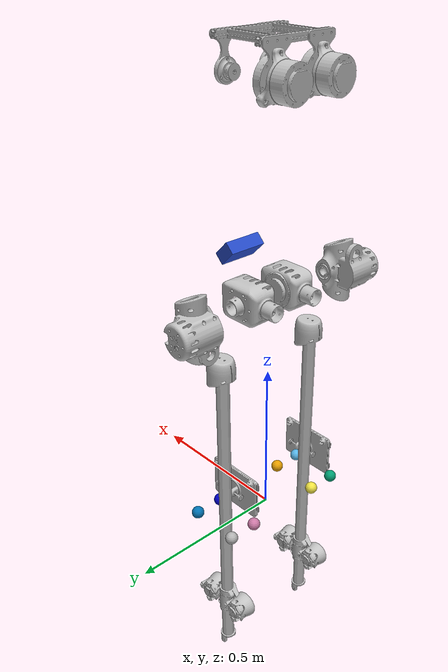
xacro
<?xml version="1.0" encoding="utf-8"?>
<robot
  name="slider_2_0_urdf" xmlns:xacro="http://ros.org/wiki/xacro">

  <xacro:include filename="$(find slider_2_0_urdf)/urdf/slider_2_0_.gazebo.xacro"/>

  <xacro:property name="r200_cam_rgb_px" value="0.005"/>
  <xacro:property name="r200_cam_rgb_py" value="0.018"/>
  <xacro:property name="r200_cam_rgb_pz" value="0.013"/>
  <xacro:property name="r200_cam_depth_offset" value="0.01"/>
  <xacro:property name="camera_link" value="0.05" /> <!-- Size of square 'camera' box -->

<gazebo>
  <plugin name="gazebo_ros_control" filename="libgazebo_ros_control.so">
    <robotNamespace>slider_2_0_urdf</robotNamespace>
    <legacyModeNS>true</legacyModeNS>
  </plugin>
</gazebo>

  <!--Initial height 63401 -->
  <link
    name="world"/>

  <joint
    name="base_joint"
    type="fixed">
    <origin
      xyz="0 0 0.76"
      rpy="0 0 0" />
    <parent
      link="world" />
    <child
      link="base_link" />
  </joint>
    <link
    name="base_link">
    <inertial>
      <origin
        xyz="-0.0453875985958373 4.1101974042046E-09 0.0194103621449836"
        rpy="0 0 0" />
      <mass
        value="2.43528061544389" />
      <inertia
        ixx="0.00413341668715068"
        ixy="-1.3241820084219E-07"
        ixz="-4.03338738202236E-06"
        iyy="0.00231368923917245"
        iyz="4.40192080686644E-10"
        izz="0.00271164207352103" />
    </inertial>
    <visual>
      <origin
        xyz="0 0 0"
        rpy="0 0 0" />
      <geometry>
        <mesh
          filename="package://slider_2_0_urdf/meshes/base_link.STL" />
      </geometry>
      <material
        name="">
        <color
          rgba="0.752941176470588 0.752941176470588 0.752941176470588 1" />
      </material>
    </visual>
    <collision>
      <origin
        xyz="0 0 0"
        rpy="0 0 0" />
      <geometry>
        <mesh
          filename="package://slider_2_0_urdf/meshes/col/base_link.STL" />
      </geometry>
    </collision>
  </link>
  <link
    name="Right_Pitch_casing">
    <inertial>
      <origin
        xyz="-0.00651307299910235 -0.000261818107759049 7.57108328304501E-06"
        rpy="0 0 0" />
      <mass
        value="1.12926003306143" />
      <inertia
        ixx="0.00127402444645982"
        ixy="-3.29852965020171E-06"
        ixz="3.71991088459448E-07"
        iyy="0.00204304191154168"
        iyz="-1.08712190437952E-06"
        izz="0.00154557348211055" />
    </inertial>
    <visual>
      <origin
        xyz="0 0 0"
        rpy="0 0 0" />
      <geometry>
        <mesh
          filename="package://slider_2_0_urdf/meshes/Right_Pitch_casing.STL" />
      </geometry>
      <material
        name="">
        <color
          rgba="0.752941176470588 0.752941176470588 0.752941176470588 1" />
      </material>
    </visual>
    <collision>
      <origin
        xyz="0 0 0"
        rpy="0 0 0" />
      <geometry>
        <mesh
          filename="package://slider_2_0_urdf/meshes/col/Right_Pitch_casing.STL" />
      </geometry>
    </collision>
  </link>
  <joint
    name="Right_Roll"
    type="revolute">
    <origin
      xyz="0 -0.075 0"
      rpy="0 0 0" />
    <parent
      link="base_link" />
    <child
      link="Right_Pitch_casing" />
    <axis
      xyz="-1 0 0" />
    <limit
      lower="-1.57"
      upper="0.35"
      effort="480"
      velocity="3.14" />
  </joint>
  <link
    name="Right_Slide_Casing">
    <inertial>
      <origin
        xyz="-0.032449657946544 -0.0178443973043905 0.000925651738627742"
        rpy="0 0 0" />
      <mass
        value="1.06490938870739" />
      <inertia
        ixx="0.00177168306828385"
        ixy="9.42143802025665E-05"
        ixz="1.06116585579069E-05"
        iyy="0.00185406707357424"
        iyz="-4.7626626084953E-05"
        izz="0.00084343137730316" />
    </inertial>
    <visual>
      <origin
        xyz="0 0 0"
        rpy="0 0 0" />
      <geometry>
        <mesh
          filename="package://slider_2_0_urdf/meshes/Right_Slide_Casing.STL" />
      </geometry>
      <material
        name="">
        <color
          rgba="0.752941176470588 0.752941176470588 0.752941176470588 1" />
      </material>
    </visual>
    <collision>
      <origin
        xyz="0 0 0"
        rpy="0 0 0" />
      <geometry>
        <mesh
          filename="package://slider_2_0_urdf/meshes/col/Right_Slide_Casing.STL" />
      </geometry>
    </collision>
  </link>
  <joint
    name="Right_Pitch"
    type="revolute">
    <origin
      xyz="0 -0.1042 0"
      rpy="0 0 0" />
    <parent
      link="Right_Pitch_casing" />
    <child
      link="Right_Slide_Casing" />
    <axis
      xyz="0 1 0" />
    <limit
      lower="-1.57"
      upper="1.57"
      effort="180"
      velocity="28" />
  </joint>
  <link
    name="Right_Leg">
    <inertial>
      <origin
        xyz="-0.023399788642906 0.000112329052341098 0.455007883008058"
        rpy="0 0 0" />
      <mass
        value="1.78099056785378" />
      <inertia
        ixx="0.0423994212593207"
        ixy="8.85717263604672E-07"
        ixz="-3.06328044795182E-06"
        iyy="0.0432292529501747"
        iyz="2.34769550705421E-06"
        izz="0.00149023390575234" />
    </inertial>
    <visual>
      <origin
        xyz="0 0 0"
        rpy="0 0 0" />
      <geometry>
        <mesh
          filename="package://slider_2_0_urdf/meshes/Right_Leg.STL" />
      </geometry>
      <material
        name="">
        <color
          rgba="0.752941176470588 0.752941176470588 0.752941176470588 1" />
      </material>
    </visual>
    <collision>
      <origin
        xyz="0 0 0"
        rpy="0 0 0" />
      <geometry>
        <mesh
          filename="package://slider_2_0_urdf/meshes/col/Right_Leg.STL" />
      </geometry>
    </collision>
  </link>
  <joint
    name="Right_Slide"
    type="prismatic">
    <origin
      xyz="0 0 -0.7"
      rpy="0 0 0" />
    <parent
      link="Right_Slide_Casing" />
    <child
      link="Right_Leg" />
    <axis
      xyz="0 0 1" />
    <limit
      lower="-0.35"
      upper="0.26"
      effort="3150"
      velocity="0.56" />
  </joint>
  <link
    name="Right_Foot_Pitch_Link">
    <inertial>
      <origin
        xyz="6.30627592078862E-05 2.21613180029223E-08 -1.27034415209337E-08"
        rpy="0 0 0" />
      <mass
        value="0.0383125474516294" />
      <inertia
        ixx="4.3235133950203E-06"
        ixy="-1.57099122601101E-12"
        ixz="-1.16795718725966E-12"
        iyy="4.37123956381505E-06"
        iyz="7.01277910311096E-13"
        izz="4.11906265940508E-06" />
    </inertial>
    <visual>
      <origin
        xyz="0 0 0"
        rpy="0 0 0" />
      <geometry>
        <mesh
          filename="package://slider_2_0_urdf/meshes/Right_Foot_Pitch_Link.STL" />
      </geometry>
      <material
        name="">
        <color
          rgba="0.752941176470588 0.752941176470588 0.752941176470588 1" />
      </material>
    </visual>
    <collision>
      <origin
        xyz="0 0 0"
        rpy="0 0 0" />
      <geometry>
        <mesh
          filename="package://slider_2_0_urdf/meshes/col/Right_Foot_Pitch_Link.STL" />
      </geometry>
    </collision>
  </link>
  <joint
    name="Right_Foot_Pitch"
    type="revolute">
    <origin
      xyz="0 0 0"
      rpy="0 0 0" />
    <parent
      link="Right_Leg" />
    <child
      link="Right_Foot_Pitch_Link" />
    <axis
      xyz="0 1 0" />
    <limit
      lower="-0.52"
      upper="0.52"
      effort="100"
      velocity="28" />
  </joint>
  <link
    name="Right_Foot">
    <inertial>
      <origin
        xyz="-0.00123693071420694 -3.33066907387547E-16 -0.0248604745871576"
        rpy="0 0 0" />
      <mass
        value="0.756541848703211" />
      <inertia
        ixx="0.000826117771410223"
        ixy="-8.45141249055299E-13"
        ixz="5.44373609390476E-09"
        iyy="0.00233223123259619"
        iyz="-1.21621858010233E-19"
        izz="0.00314822353477104" />
    </inertial>
    <visual>
      <origin
        xyz="0.14 -0.14 -0.08"
        rpy="1.57079632679 0 3.14159265359" />
      <geometry>
        <mesh
          filename="package://slider_2_0_urdf/meshes/Right_Foot.STL" />
      </geometry>
      <material
        name="">
        <color
          rgba="0.752941176470588 0.752941176470588 0.752941176470588 1" />
      </material>
    </visual>
    <collision>
      <origin
        xyz="0.14 -0.14 -0.08"
        rpy="1.57079632679 0 3.14159265359" />
      <geometry>
        <mesh
          filename="package://slider_2_0_urdf/meshes/col/Right_Foot.STL" />
      </geometry>
    </collision>
  </link>
  <joint
    name="Right_Foot_Roll"
    type="revolute">
    <origin
      xyz="0 0 0"
      rpy="0 0 0" />
    <parent
      link="Right_Foot_Pitch_Link" />
    <child
      link="Right_Foot" />
    <axis
      xyz="1 0 0" />
    <limit
      lower="-0.52"
      upper="0.52"
      effort="30"
      velocity="28" />
  </joint>
  <link
    name="Left_Pitch_casing">
    <inertial>
      <origin
        xyz="-0.006513072999102 0.000261818107759423 -7.57108328312828E-06"
        rpy="0 0 0" />
      <mass
        value="1.12926003306143" />
      <inertia
        ixx="0.00127402444645982"
        ixy="3.29852965019084E-06"
        ixz="-3.71991088473583E-07"
        iyy="0.00204304191154168"
        iyz="-1.08712190438163E-06"
        izz="0.00154557348211055" />
    </inertial>
    <visual>
      <origin
        xyz="0 0 0"
        rpy="0 0 0" />
      <geometry>
        <mesh
          filename="package://slider_2_0_urdf/meshes/Left_Pitch_casing.STL" />
      </geometry>
      <material
        name="">
        <color
          rgba="0.752941176470588 0.752941176470588 0.752941176470588 1" />
      </material>
    </visual>
    <collision>
      <origin
        xyz="0 0 0"
        rpy="0 0 0" />
      <geometry>
        <mesh
          filename="package://slider_2_0_urdf/meshes/col/Left_Pitch_casing.STL" />
      </geometry>
    </collision>
  </link>
  <joint
    name="Left_Roll"
    type="revolute">
    <origin
      xyz="0 0.075 0"
      rpy="0 0 0" />
    <parent
      link="base_link" />
    <child
      link="Left_Pitch_casing" />
    <axis
      xyz="-1 0 0" />
    <limit
      lower="-0.35"
      upper="1.57"
      effort="480"
      velocity="3.14" />
  </joint>
  <link
    name="Left_Slide_Casing">
    <inertial>
      <origin
        xyz="-0.0324496564904676 0.017844395213362 -0.000925651221822657"
        rpy="0 0 0" />
      <mass
        value="1.0649094427087" />
      <inertia
        ixx="0.00177168314567418"
        ixy="-9.42143732292687E-05"
        ixz="-1.06116448651668E-05"
        iyy="0.00185406715777426"
        iyz="-4.76266339938005E-05"
        izz="0.000843431393182513" />
    </inertial>
    <visual>
      <origin
        xyz="0 0 0"
        rpy="0 0 0" />
      <geometry>
        <mesh
          filename="package://slider_2_0_urdf/meshes/Left_Slide_Casing.STL" />
      </geometry>
      <material
        name="">
        <color
          rgba="0.752941176470588 0.752941176470588 0.752941176470588 1" />
      </material>
    </visual>
    <collision>
      <origin
        xyz="0 0 0"
        rpy="0 0 0" />
      <geometry>
        <mesh
          filename="package://slider_2_0_urdf/meshes/col/Left_Slide_Casing.STL" />
      </geometry>
    </collision>
  </link>
  <joint
    name="Left_Pitch"
    type="revolute">
    <origin
      xyz="0 0.1042 0"
      rpy="0 0 0" />
    <parent
      link="Left_Pitch_casing" />
    <child
      link="Left_Slide_Casing" />
    <axis
      xyz="0 -1 0" />
    <limit
      lower="-1.57"
      upper="1.57"
      effort="180"
      velocity="28" />
  </joint>
  <link
    name="Left_Leg">
    <inertial>
      <origin
        xyz="-0.0233997886429063 0.000112329052338822 0.455007883008056"
        rpy="0 0 0" />
      <mass
        value="1.78099056785378" />
      <inertia
        ixx="0.0423994212593208"
        ixy="8.85717263604819E-07"
        ixz="-3.06328044795385E-06"
        iyy="0.0432292529501749"
        iyz="2.34769550697438E-06"
        izz="0.00149023390575234" />
    </inertial>
    <visual>
      <origin
        xyz="0 0 0"
        rpy="0 0 0" />
      <geometry>
        <mesh
          filename="package://slider_2_0_urdf/meshes/Left_Leg.STL" />
      </geometry>
      <material
        name="">
        <color
          rgba="0.752941176470588 0.752941176470588 0.752941176470588 1" />
      </material>
    </visual>
    <collision>
      <origin
        xyz="0 0 0"
        rpy="0 0 0" />
      <geometry>
        <mesh
          filename="package://slider_2_0_urdf/meshes/col/Left_Leg.STL" />
      </geometry>
    </collision>
  </link>
  <joint
    name="Left_Slide"
    type="prismatic">
    <origin
      xyz="0 0 -0.7"
      rpy="0 0 0" />
    <parent
      link="Left_Slide_Casing" />
    <child
      link="Left_Leg" />
    <axis
      xyz="0 0 1" />
    <limit
      lower="-0.35"
      upper="0.26"
      effort="3150"
      velocity="0.56" />
  </joint>
  <link
    name="Left_Foot_Pitch_Link">
    <inertial>
      <origin
        xyz="6.3062759202114E-05 2.21613188355896E-08 -1.27034456287589E-08"
        rpy="0 0 0" />
      <mass
        value="0.0383125474516294" />
      <inertia
        ixx="4.32351339502029E-06"
        ixy="-1.57099121289768E-12"
        ixz="-1.16795718677098E-12"
        iyy="4.37123956381505E-06"
        iyz="7.01277910428786E-13"
        izz="4.11906265940506E-06" />
    </inertial>
    <visual>
      <origin
        xyz="0 0 0"
        rpy="0 0 0" />
      <geometry>
        <mesh
          filename="package://slider_2_0_urdf/meshes/Left_Foot_Pitch_Link.STL" />
      </geometry>
      <material
        name="">
        <color
          rgba="0.752941176470588 0.752941176470588 0.752941176470588 1" />
      </material>
    </visual>
    <collision>
      <origin
        xyz="0 0 0"
        rpy="0 0 0" />
      <geometry>
        <mesh
          filename="package://slider_2_0_urdf/meshes/col/Left_Foot_Pitch_Link.STL" />
      </geometry>
    </collision>
  </link>
  <joint
    name="Left_Foot_Pitch"
    type="revolute">
    <origin
      xyz="0 0 0"
      rpy="0 0 0" />
    <parent
      link="Left_Leg" />
    <child
      link="Left_Foot_Pitch_Link" />
    <axis
      xyz="0 -1 0" />
    <limit
      lower="-0.52"
      upper="0.52"
      effort="100"
      velocity="28" />
  </joint>
  <link
    name="Left_Foot">
    <inertial>
      <origin
        xyz="-0.0012369307142082 -1.60982338570648E-15 -0.0248604745871576"
        rpy="0 0 0" />
      <mass
        value="0.756541848703211" />
      <inertia
        ixx="0.000826117771410221"
        ixy="-8.4514438495739E-13"
        ixz="5.44373609355106E-09"
        iyy="0.0023322312325962"
        iyz="9.16914941364761E-19"
        izz="0.00314822353477104" />
    </inertial>
    <visual>
      <origin
        xyz="0.14 -0.14 -0.08"
        rpy="1.57079632679 0 3.14159265359" />
      <geometry>
        <mesh
          filename="package://slider_2_0_urdf/meshes/Left_Foot.STL" />
      </geometry>
      <material
        name="">
        <color
          rgba="0.752941176470588 0.752941176470588 0.752941176470588 1" />
      </material>
    </visual>
    <collision>
      <origin
        xyz="0.14 -0.14 -0.08"
        rpy="1.57079632679 0 3.14159265359" />
      <geometry>
        <mesh
          filename="package://slider_2_0_urdf/meshes/col/Left_Foot.STL" />
      </geometry>
    </collision>
  </link>
  <joint
    name="Left_Foot_Roll"
    type="revolute">
    <origin
      xyz="0 0 0"
      rpy="0 0 0" />
    <parent
      link="Left_Foot_Pitch_Link" />
    <child
      link="Left_Foot" />
    <axis
      xyz="1 0 0" />
    <limit
      lower="-0.52"
      upper="0.52"
      effort="30"
      velocity="28" />
  </joint>

  <!-- \\\\\\\\\\\\\\\\\\\\\\\\\\\\\\\\\\\\       Pads \\\\\\\\\\\\\\\\\\\\\\\\\\\\\\\\\\\\\\\\\\\\ -->

    <material name="blue">
    <color rgba="0 0 0.8 1"/>
  </material>

  <link
    name="Left_Foot_A">
    <inertial>
      <origin
        xyz="0.0 0.0 0.0"
        rpy="0 0 0" />
      <mass
        value="1E-03" />
      <inertia
        ixx="1E-03"
        ixy="0"
        ixz="0"
        iyy="1E-03"
        iyz="0"
        izz="1E-03" />
    </inertial>
    <visual>
      <origin
        xyz="0.0 0.0 0.0"
        rpy="0 0 0" />
      <geometry>
        <sphere radius="0.02"/>
      </geometry>

    </visual>
    <collision>
      <origin
        xyz="0.0 0.0 0.0"
        rpy="0 0 0" />
      <geometry>
        <sphere radius="0.02"/>
      </geometry>
    </collision>
  </link>
  <joint
    name="Left_A"
    type="fixed">
    <origin
      xyz="0.08181 0.04715 -0.0325 "
      rpy="0 0 0" />
    <parent
      link="Left_Foot" />
    <child
      link="Left_Foot_A" />
    <axis
      xyz="0 0 0" />
  </joint>

  <link
    name="Left_Foot_B">
    <inertial>
      <origin
        xyz="0.0 0.0 0.0"
        rpy="0 0 0" />
      <mass
        value="1E-03" />
      <inertia
        ixx="1E-03"
        ixy="0"
        ixz="0"
        iyy="1E-03"
        iyz="0"
        izz="1E-03" />
    </inertial>
    <visual>
      <origin
        xyz="0.0 0.0 0.0"
        rpy="0 0 0" />
      <geometry>
        <sphere radius="0.02"/>
      </geometry>
      <material name="blue"/>
    </visual>
    <collision>
      <origin
        xyz="0.0 0.0 0.0"
        rpy="0 0 0" />
      <geometry>
        <sphere radius="0.02"/>
      </geometry>
    </collision>
  </link>
  <joint
    name="Left_B"
    type="fixed">
    <origin
      xyz="0.08181 -0.04715 -0.0325 "
      rpy="0 0 0" />
    <parent
      link="Left_Foot" />
    <child
      link="Left_Foot_B" />
    <axis
      xyz="0 0 0" />
  </joint>

    <link
    name="Left_Foot_C">
    <inertial>
      <origin
        xyz="0.0 0.0 0.0"
        rpy="0 0 0" />
      <mass
        value="1E-03" />
      <inertia
        ixx="1E-03"
        ixy="0"
        ixz="0"
        iyy="1E-03"
        iyz="0"
        izz="1E-03" />
    </inertial>
    <visual>
      <origin
        xyz="0.0 0.0 0.0"
        rpy="0 0 0" />
      <geometry>
        <sphere radius="0.02"/>
      </geometry>
    </visual>
    <collision>
      <origin
        xyz="0.0 0.0 0.0"
        rpy="0 0 0" />
      <geometry>
        <sphere radius="0.02"/>
      </geometry>
    </collision>
  </link>
  <joint
    name="Left_C"
    type="fixed">
    <origin
      xyz="-0.08181 -0.04715 -0.0325 "
      rpy="0 0 0" />
    <parent
      link="Left_Foot" />
    <child
      link="Left_Foot_C" />
    <axis
      xyz="0 0 0" />
  </joint>

    <link
    name="Left_Foot_D">
    <inertial>
      <origin
        xyz="0.0 0.0 0.0"
        rpy="0 0 0" />
      <mass
        value="1E-03" />
      <inertia
        ixx="1E-03"
        ixy="0"
        ixz="0"
        iyy="1E-03"
        iyz="0"
        izz="1E-03" />
    </inertial>
    <visual>
      <origin
        xyz="0.0 0.0 0.0"
        rpy="0 0 0" />
      <geometry>
        <sphere radius="0.02"/>
      </geometry>
    </visual>
    <collision>
      <origin
        xyz="0.0 0.0 0.0"
        rpy="0 0 0" />
      <geometry>
        <sphere radius="0.02"/>
      </geometry>
    </collision>
  </link>
  <joint
    name="Left_D"
    type="fixed">
    <origin
      xyz="-0.08181 0.04715 -0.0325 "
      rpy="0 0 0" />
    <parent
      link="Left_Foot" />
    <child
      link="Left_Foot_D" />
    <axis
      xyz="0 0 0" />
  </joint>

   <link
    name="Right_Foot_A">
    <inertial>
      <origin
        xyz="0.0 0.0 0.0"
        rpy="0 0 0" />
      <mass
        value="1E-03" />
      <inertia
        ixx="1E-03"
        ixy="0"
        ixz="0"
        iyy="1E-03"
        iyz="0"
        izz="1E-03" />
    </inertial>
    <visual>
      <origin
        xyz="0.0 0.0 0.0"
        rpy="0 0 0" />
      <geometry>
        <sphere radius="0.02"/>
      </geometry>
    </visual>
    <collision>
      <origin
        xyz="0.0 0.0 0.0"
        rpy="0 0 0" />
      <geometry>
        <sphere radius="0.02"/>
      </geometry>
    </collision>
  </link>
  <joint
    name="Right_A"
    type="fixed">
    <origin
      xyz="0.08181 0.04715 -0.0325 "
      rpy="0 0 0" />
    <parent
      link="Right_Foot" />
    <child
      link="Right_Foot_A" />
    <axis
      xyz="0 0 0" />
  </joint>

  <link
    name="Right_Foot_B">
    <inertial>
      <origin
        xyz="0.0 0.0 0.0"
        rpy="0 0 0" />
      <mass
        value="1E-03" />
      <inertia
        ixx="1E-03"
        ixy="0"
        ixz="0"
        iyy="1E-03"
        iyz="0"
        izz="1E-03" />
    </inertial>
    <visual>
      <origin
        xyz="0.0 0.0 0.0"
        rpy="0 0 0" />
      <geometry>
        <sphere radius="0.02"/>
      </geometry>
    </visual>
    <collision>
      <origin
        xyz="0.0 0.0 0.0"
        rpy="0 0 0" />
      <geometry>
        <sphere radius="0.02"/>
      </geometry>
    </collision>
  </link>
  <joint
    name="Right_B"
    type="fixed">
    <origin
      xyz="0.08181 -0.04715 -0.0325 "
      rpy="0 0 0" />
    <parent
      link="Right_Foot" />
    <child
      link="Right_Foot_B" />
    <axis
      xyz="0 0 0" />
  </joint>

    <link
    name="Right_Foot_C">
    <inertial>
      <origin
        xyz="0.0 0.0 0.0"
        rpy="0 0 0" />
      <mass
        value="1E-03" />
      <inertia
        ixx="1E-03"
        ixy="0"
        ixz="0"
        iyy="1E-03"
        iyz="0"
        izz="1E-03" />
    </inertial>
    <visual>
      <origin
        xyz="0.0 0.0 0.0"
        rpy="0 0 0" />
      <geometry>
        <sphere radius="0.02"/>
      </geometry>
    </visual>
    <collision>
      <origin
        xyz="0.0 0.0 0.0"
        rpy="0 0 0" />
      <geometry>
        <sphere radius="0.02"/>
      </geometry>
    </collision>
  </link>
  <joint
    name="Right_C"
    type="fixed">
    <origin
      xyz="-0.08181 -0.04715 -0.0325 "
      rpy="0 0 0" />
    <parent
      link="Right_Foot" />
    <child
      link="Right_Foot_C" />
    <axis
      xyz="0 0 0" />
  </joint>

    <link
    name="Right_Foot_D">
    <inertial>
      <origin
        xyz="0.0 0.0 0.0"
        rpy="0 0 0" />
      <mass
        value="1E-03" />
      <inertia
        ixx="1E-3"
        ixy="0"
        ixz="0"
        iyy="1E-03"
        iyz="0"
        izz="1E-03" />
    </inertial>
    <visual>
      <origin
        xyz="0.0 0.0 0.0"
        rpy="0 0 0" />
      <geometry>
        <sphere radius="0.02"/>
      </geometry>
    </visual>
    <collision>
      <origin
        xyz="0.0 0.0 0.0"
        rpy="0 0 0" />
      <geometry>
        <sphere radius="0.02"/>
      </geometry>
    </collision>
  </link>
  <joint
    name="Right_D"
    type="fixed">
    <origin
      xyz="-0.08181 0.04715 -0.0325 "
      rpy="0 0 0" />
    <parent
      link="Right_Foot" />
    <child
      link="Right_Foot_D" />
    <axis
      xyz="0 0 0" />
  </joint>

 <gazebo reference="Left_Foot_A">
     <collision>
      <surface>
        <friction>
          <ode>
            <mu>1000000000</mu>
            <mu2>1000000000</mu2>
          </ode>
          <torsional>
            <coefficient>10.0</coefficient>
            <surface_radius>0.5</surface_radius>
            <use_patch_radius>false</use_patch_radius>
          </torsional>
        </friction>
      </surface>
    </collision>
  </gazebo>

 <gazebo reference="Left_Foot_B">
     <collision>
      <surface>
        <friction>
          <ode>
            <mu>1000000000</mu>
            <mu2>1000000000</mu2>
          </ode>
          <torsional>
            <coefficient>10.0</coefficient>
            <surface_radius>0.5</surface_radius>
            <use_patch_radius>false</use_patch_radius>
          </torsional>
        </friction>
      </surface>
    </collision>
  </gazebo>

 <gazebo reference="Left_Foot_C">
     <collision>
      <surface>
        <friction>
          <ode>
            <mu>1000000000</mu>
            <mu2>1000000000</mu2>
          </ode>
          <torsional>
            <coefficient>10.0</coefficient>
            <surface_radius>0.5</surface_radius>
            <use_patch_radius>false</use_patch_radius>
          </torsional>
        </friction>
      </surface>
    </collision>
  </gazebo>

 <gazebo reference="Left_Foot_D">
     <collision>
      <surface>
        <friction>
          <ode>
            <mu>1000000000</mu>
            <mu2>1000000000</mu2>
          </ode>
          <torsional>
            <coefficient>10.0</coefficient>
            <surface_radius>0.5</surface_radius>
            <use_patch_radius>false</use_patch_radius>
          </torsional>
        </friction>
      </surface>
    </collision>
  </gazebo>

 <gazebo reference="Right_Foot_A">
     <collision>
      <surface>
        <friction>
          <ode>
            <mu>1000000000</mu>
            <mu2>1000000000</mu2>
          </ode>
          <torsional>
            <coefficient>10.0</coefficient>
            <surface_radius>0.5</surface_radius>
            <use_patch_radius>false</use_patch_radius>
          </torsional>
        </friction>
      </surface>
    </collision>
  </gazebo>

 <gazebo reference="Right_Foot_B">
     <collision>
      <surface>
        <friction>
          <ode>
            <mu>1000000000</mu>
            <mu2>1000000000</mu2>
          </ode>
          <torsional>
            <coefficient>10.0</coefficient>
            <surface_radius>0.5</surface_radius>
            <use_patch_radius>false</use_patch_radius>
          </torsional>
        </friction>
      </surface>
    </collision>
  </gazebo>

 <gazebo reference="Right_Foot_C">
     <collision>
      <surface>
        <friction>
          <ode>
            <mu>1000000000</mu>
            <mu2>1000000000</mu2>
          </ode>
          <torsional>
            <coefficient>10.0</coefficient>
            <surface_radius>0.5</surface_radius>
            <use_patch_radius>false</use_patch_radius>
          </torsional>
        </friction>
      </surface>
    </collision>
  </gazebo>

 <gazebo reference="Right_Foot_D">
     <collision>
      <surface>
        <friction>
          <ode>
            <mu>1000000000</mu>
            <mu2>1000000000</mu2>
          </ode>
          <torsional>
            <coefficient>10.0</coefficient>
            <surface_radius>0.5</surface_radius>
            <use_patch_radius>false</use_patch_radius>
          </torsional>
        </friction>
      </surface>
    </collision>
  </gazebo>

  <gazebo reference="Left_Foot_A">
    <kp value = "8.0e+5"/>
    <kd value = "8.0e+3"/>
  </gazebo>

  <gazebo reference="Right_Foot_A">
    <kp value = "8.0e+5"/>
    <kd value = "8.0e+3"/>
  </gazebo>

  <gazebo reference="Left_Foot_B">
    <kp value = "8.0e+5"/>
    <kd value = "8.0e+3"/>
  </gazebo>

  <gazebo reference="Right_Foot_B">
    <kp value = "8.0e+5"/>
    <kd value = "8.0e+3"/>
  </gazebo>

  <gazebo reference="Left_Foot_C">
    <kp value = "8.0e+5"/>
    <kd value = "8.0e+3"/>
  </gazebo>

  <gazebo reference="Right_Foot_C">
    <kp value = "8.0e+5"/>
    <kd value = "8.0e+3"/>
  </gazebo>

  <gazebo reference="Left_Foot_D">
    <kp value = "8.0e+5"/>
    <kd value = "8.0e+3"/>
  </gazebo>

  <gazebo reference="Right_Foot_D">
    <kp value = "8.0e+5"/>
    <kd value = "8.0e+3"/>
  </gazebo>

    <!-- Add contact sensor at each sphere -->
  <gazebo reference="Left_Foot_A">
    <sensor name="Left_Foot_A_contact" type="contact">
      <contact>
        <collision>Left_Foot_A_collision_1</collision>
      </contact>
      <update_rate>1000.000</update_rate>
    </sensor>
  </gazebo>

  <gazebo reference="Left_Foot_B">
    <sensor name="Left_Foot_B_contact" type="contact">
      <contact>
        <collision>Left_Foot_B_collision_2</collision>
      </contact>
      <update_rate>1000.000</update_rate>
    </sensor>
  </gazebo>

  <gazebo reference="Left_Foot_C">
    <sensor name="Left_Foot_C_contact" type="contact">
      <contact>
        <collision>Left_Foot_C_collision_3</collision>
      </contact>
      <update_rate>1000.000</update_rate>
    </sensor>
  </gazebo>

  <gazebo reference="Left_Foot_D">
    <sensor name="Left_Foot_D_contact" type="contact">
      <contact>
        <collision>Left_Foot_D_collision_4</collision>
      </contact>
      <update_rate>1000.000</update_rate>
    </sensor>
  </gazebo>

    <gazebo reference="Right_Foot_A">
    <sensor name="Right_Foot_A_contact" type="contact">
      <contact>
        <collision>Right_Foot_A_collision_1</collision>
      </contact>
      <update_rate>1000.000</update_rate>
    </sensor>
  </gazebo>

  <gazebo reference="Right_Foot_B">
    <sensor name="Right_Foot_B_contact" type="contact">
      <contact>
        <collision>Right_Foot_B_collision_2</collision>
      </contact>
      <update_rate>1000.000</update_rate>
    </sensor>
  </gazebo>

  <gazebo reference="Right_Foot_C">
    <sensor name="Right_Foot_C_contact" type="contact">
      <contact>
        <collision>Right_Foot_C_collision_3</collision>
      </contact>
      <update_rate>1000.000</update_rate>
    </sensor>
  </gazebo>

  <gazebo reference="Right_Foot_D">
    <sensor name="Right_Foot_D_contact" type="contact">
      <contact>
        <collision>Right_Foot_D_collision_4</collision>
      </contact>
      <update_rate>1000.000</update_rate>
    </sensor>
  </gazebo>
  <!-- Transmissions used for ros_control -->
  <transmission name="tran1">
    <type>transmission_interface/SimpleTransmission</type>
    <joint name="Left_Pitch">
      <hardwareInterface>hardware_interface/EffortJointInterface</hardwareInterface>
    </joint>
    <actuator name="motor1">
      <hardwareInterface>hardware_interface/EffortJointInterface</hardwareInterface>
      <mechanicalReduction>1</mechanicalReduction>
    </actuator>
  </transmission>

  <transmission name="tran2">
    <type>transmission_interface/SimpleTransmission</type>
    <joint name="Left_Roll">
      <hardwareInterface>hardware_interface/EffortJointInterface</hardwareInterface>
    </joint>
    <actuator name="motor2">
      <hardwareInterface>hardware_interface/EffortJointInterface</hardwareInterface>
      <mechanicalReduction>1</mechanicalReduction>
    </actuator>
  </transmission>

  <transmission name="tran3">
    <type>transmission_interface/SimpleTransmission</type>
    <joint name="Left_Slide">
      <hardwareInterface>hardware_interface/EffortJointInterface</hardwareInterface>
    </joint>
    <actuator name="motor3">
      <hardwareInterface>hardware_interface/EffortJointInterface</hardwareInterface>
      <mechanicalReduction>1</mechanicalReduction>
    </actuator>
  </transmission>

  <transmission name="tran4">
    <type>transmission_interface/SimpleTransmission</type>
    <joint name="Right_Pitch">
      <hardwareInterface>hardware_interface/EffortJointInterface</hardwareInterface>
    </joint>
    <actuator name="motor4">
      <hardwareInterface>hardware_interface/EffortJointInterface</hardwareInterface>
      <mechanicalReduction>1</mechanicalReduction>
    </actuator>
  </transmission>

  <transmission name="tran5">
    <type>transmission_interface/SimpleTransmission</type>
    <joint name="Right_Roll">
      <hardwareInterface>hardware_interface/EffortJointInterface</hardwareInterface>
    </joint>
    <actuator name="motor5">
      <hardwareInterface>hardware_interface/EffortJointInterface</hardwareInterface>
      <mechanicalReduction>1</mechanicalReduction>
    </actuator>
  </transmission>

  <transmission name="tran6">
    <type>transmission_interface/SimpleTransmission</type>
    <joint name="Right_Slide">
      <hardwareInterface>hardware_interface/EffortJointInterface</hardwareInterface>
    </joint>
    <actuator name="motor6">
      <hardwareInterface>hardware_interface/EffortJointInterface</hardwareInterface>
      <mechanicalReduction>1</mechanicalReduction>
    </actuator>
  </transmission>

  <transmission name="tran7">
    <type>transmission_interface/SimpleTransmission</type>
    <joint name="Left_Foot_Pitch">
      <hardwareInterface>hardware_interface/EffortJointInterface</hardwareInterface>
    </joint>
    <actuator name="motor7">
      <hardwareInterface>hardware_interface/EffortJointInterface</hardwareInterface>
      <mechanicalReduction>1</mechanicalReduction>
    </actuator>
  </transmission>

  <transmission name="tran8">
    <type>transmission_interface/SimpleTransmission</type>
    <joint name="Left_Foot_Roll">
      <hardwareInterface>hardware_interface/EffortJointInterface</hardwareInterface>
    </joint>
    <actuator name="motor8">
      <hardwareInterface>hardware_interface/EffortJointInterface</hardwareInterface>
      <mechanicalReduction>1</mechanicalReduction>
    </actuator>
  </transmission>

  <transmission name="tran9">
    <type>transmission_interface/SimpleTransmission</type>
    <joint name="Right_Foot_Pitch">
      <hardwareInterface>hardware_interface/EffortJointInterface</hardwareInterface>
    </joint>
    <actuator name="motor9">
      <hardwareInterface>hardware_interface/EffortJointInterface</hardwareInterface>
      <mechanicalReduction>1</mechanicalReduction>
    </actuator>
  </transmission>

  <transmission name="tran10">
    <type>transmission_interface/SimpleTransmission</type>
    <joint name="Right_Foot_Roll">
      <hardwareInterface>hardware_interface/EffortJointInterface</hardwareInterface>
    </joint>
    <actuator name="motor10">
      <hardwareInterface>hardware_interface/EffortJointInterface</hardwareInterface>
      <mechanicalReduction>1</mechanicalReduction>
    </actuator>
  </transmission>

  <joint name="camera_joint" type="fixed">
    <axis xyz="0 0 0" />
    <!--origin xyz="0.12 0 0.65" rpy="0 0.87  0"/-->
    <origin xyz="0.12 0 0.1" rpy="0 0.7854 0"/>
    <parent link="base_link"/>
    <child link="camera_link"/>
  </joint>

  <!-- Camera -->
  <link name="camera_link">
    <visual>
    <geometry>
      <box size="0.064 0.121 0.0381" />
    </geometry>
    <material name="Blue" />
  </visual>
  </link>

     <!-- The point cloud pose error is displayed in RVIZ, and an empty link and an empty joint are added here to adjust the point cloud tf pose -->
  <link name="camera_link_fake"></link>
  <joint name="camera_joint_fake" type="fixed">
    <origin xyz="0 0 0" rpy="-1.5708 0 -1.5708 "/>
    <parent link="camera_link"/>
    <child link="camera_link_fake"/>
  </joint>

</robot>
